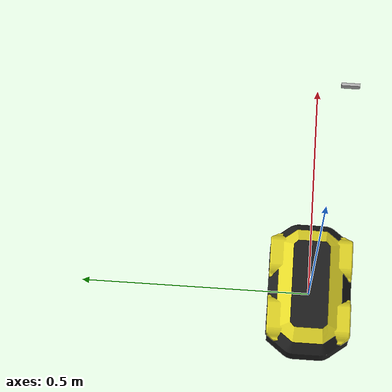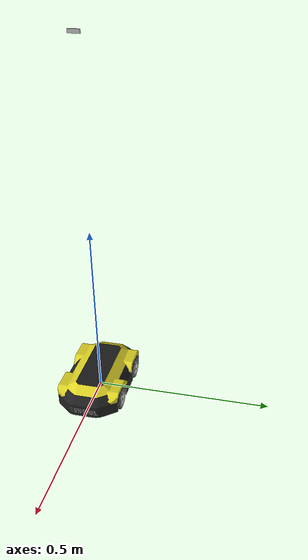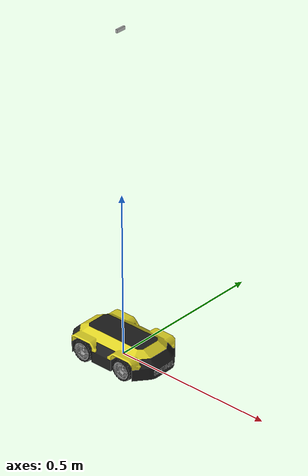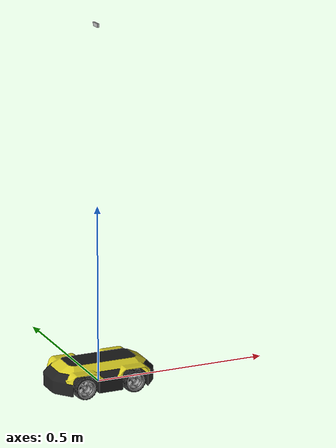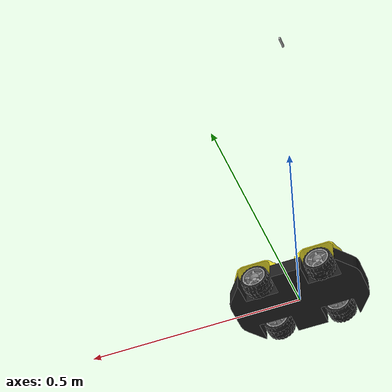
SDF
<sdf version='1.6'>
  <model name='sentinel'>
    <link name='baselink'>
      <pose frame=''>0 0 0 0 -0 0</pose>
      <inertial>
        <pose frame=''>-0.000676 -8.5e-05 0.039781 0 -0 0</pose>
        <mass>8.011</mass>
        <inertia>
          <ixx>0.0122993</ixx>
          <ixy>2.85946e-06</ixy>
          <ixz>-4.62626e-07</ixz>
          <iyy>0.0474604</iyy>
          <iyz>1.24541e-07</iyz>
          <izz>0.058689</izz>
        </inertia>
      </inertial>
      <collision name='baselink_collision'>
        <pose frame=''>0 0 0 0 -0 0</pose>
        <geometry>
          <mesh>
            <scale>1 1 1</scale>
            <uri>model://sentinel/meshes/baselink.STL</uri>
          </mesh>
        </geometry>
        <surface>
          <contact>
            <ode/>
          </contact>
          <friction>
            <ode/>
          </friction>
        </surface>
      </collision>
      <collision name='baselink_fixed_joint_lump__basemiddlelink_collision_1'>
        <pose frame=''>0 0 0 0 -0 0</pose>
        <geometry>
          <mesh>
            <scale>1 1 1</scale>
            <uri>model://sentinel/meshes/basemiddlelink.STL</uri>
          </mesh>
        </geometry>
        <surface>
          <contact>
            <ode/>
          </contact>
          <friction>
            <ode/>
          </friction>
        </surface>
      </collision>
      <collision name='baselink_fixed_joint_lump__basetoplink_collision_2'>
        <pose frame=''>0 0 0 0 -0 0</pose>
        <geometry>
          <mesh>
            <scale>1 1 1</scale>
            <uri>model://sentinel/meshes/basetoplink.STL</uri>
          </mesh>
        </geometry>
        <surface>
          <contact>
            <ode/>
          </contact>
          <friction>
            <ode/>
          </friction>
        </surface>
      </collision>
      <collision name='baselink_fixed_joint_lump__sentinelmarkinglink_collision_3'>
        <pose frame=''>0 0 0 0 -0 0</pose>
        <geometry>
          <mesh>
            <scale>1 1 1</scale>
            <uri>model://sentinel/meshes/sentinelmarkinglink.STL</uri>
          </mesh>
        </geometry>
        <surface>
          <contact>
            <ode/>
          </contact>
          <friction>
            <ode/>
          </friction>
        </surface>
      </collision>
      <visual name='baselink_visual'>
        <pose frame=''>0 0 0 0 -0 0</pose>
        <geometry>
          <mesh>
            <scale>1 1 1</scale>
            <uri>model://sentinel/meshes/baselink.STL</uri>
          </mesh>
        </geometry>
        <material>
          <script>
            <name>Gazebo/Black</name>
            <uri>file://media/materials/scripts/gazebo.material</uri>
          </script>
        </material>
      </visual>
      <visual name='baselink_fixed_joint_lump__basemiddlelink_visual_1'>
        <pose frame=''>0 0 0 0 -0 0</pose>
        <geometry>
          <mesh>
            <scale>1 1 1</scale>
            <uri>model://sentinel/meshes/basemiddlelink.STL</uri>
          </mesh>
        </geometry>
        <material>
          <script>
            <name>Gazebo/Yellow</name>
            <uri>file://media/materials/scripts/gazebo.material</uri>
          </script>
        </material>
      </visual>
      <visual name='baselink_fixed_joint_lump__basetoplink_visual_2'>
        <pose frame=''>0 0 0 0 -0 0</pose>
        <geometry>
          <mesh>
            <scale>1 1 1</scale>
            <uri>model://sentinel/meshes/basetoplink.STL</uri>
          </mesh>
        </geometry>
        <material>
          <script>
            <name>Gazebo/Black</name>
            <uri>file://media/materials/scripts/gazebo.material</uri>
          </script>
        </material>
      </visual>
      <visual name='baselink_fixed_joint_lump__sentinelmarkinglink_visual_3'>
        <pose frame=''>0 0 0 0 -0 0</pose>
        <geometry>
          <mesh>
            <scale>1 1 1</scale>
            <uri>model://sentinel/meshes/sentinelmarkinglink.STL</uri>
          </mesh>
        </geometry>
        <material>
          <script>
            <name>Gazebo/RustySteel</name>
            <uri>file://media/materials/scripts/gazebo.material</uri>
          </script>
        </material>
      </visual>
      <velocity_decay/>
      <velocity_decay/>
      <velocity_decay/>
      <gravity>1</gravity>
      <velocity_decay/>
    </link>
    <link name='backleftwheellink'>
      <pose frame=''>-0.0725 0.083539 0.0175 0 -0 0</pose>
      <inertial>
        <pose frame=''>-0 -0.013862 -0 0 -0 0</pose>
        <mass>0.137786</mass>
        <inertia>
          <ixx>6.7733e-05</ixx>
          <ixy>1.539e-13</ixy>
          <ixz>4.79578e-10</ixz>
          <iyy>9.45e-05</iyy>
          <iyz>1.65489e-12</iyz>
          <izz>6.7733e-05</izz>
        </inertia>
      </inertial>
      <collision name='backleftwheellink_collision'>
        <pose frame=''>0 0 0 0 -0 0</pose>
        <geometry>
          <mesh>
            <scale>1 1 1</scale>
            <uri>model://sentinel/meshes/backleftwheellink.STL</uri>
          </mesh>
        </geometry>
        <surface>
          <contact>
            <ode/>
          </contact>
          <friction>
            <ode/>
          </friction>
        </surface>
      </collision>
      <collision name='backleftwheellink_fixed_joint_lump__backlefttirelink_collision_1'>
        <pose frame=''>0 0 0 0 -0 0</pose>
        <geometry>
          <mesh>
            <scale>1 1 1</scale>
            <uri>model://sentinel/meshes/backlefttirelink.STL</uri>
          </mesh>
        </geometry>
        <surface>
          <contact>
            <ode/>
          </contact>
          <friction>
            <ode/>
          </friction>
        </surface>
      </collision>
      <visual name='backleftwheellink_visual'>
        <pose frame=''>0 0 0 0 -0 0</pose>
        <geometry>
          <mesh>
            <scale>1 1 1</scale>
            <uri>model://sentinel/meshes/backleftwheellink.STL</uri>
          </mesh>
        </geometry>
        <material>
          <script>
            <name>Gazebo/Grey</name>
            <uri>file://media/materials/scripts/gazebo.material</uri>
          </script>
        </material>
      </visual>
      <visual name='backleftwheellink_fixed_joint_lump__backlefttirelink_visual_1'>
        <pose frame=''>0 0 0 0 -0 0</pose>
        <geometry>
          <mesh>
            <scale>1 1 1</scale>
            <uri>model://sentinel/meshes/backlefttirelink.STL</uri>
          </mesh>
        </geometry>
        <material>
          <script>
            <name>Gazebo/Black</name>
            <uri>file://media/materials/scripts/gazebo.material</uri>
          </script>
        </material>
      </visual>
      <velocity_decay/>
      <gravity>1</gravity>
      <velocity_decay/>
    </link>
    <joint name='backleftjoint' type='revolute'>
      <child>backleftwheellink</child>
      <parent>baselink</parent>
      <axis>
        <xyz>0 -1 0</xyz>
        <limit>
          <lower>-1e+16</lower>
          <upper>1e+16</upper>
        </limit>
        <dynamics>
          <spring_reference>0</spring_reference>
          <spring_stiffness>0</spring_stiffness>
        </dynamics>
        <use_parent_model_frame>1</use_parent_model_frame>
      </axis>
    </joint>
    <link name='backrightwheellink'>
      <pose frame=''>-0.0725 -0.083539 0.0175 0 -0 0</pose>
      <inertial>
        <pose frame=''>0 0.01354 -0 0 -0 0</pose>
        <mass>0.137786</mass>
        <inertia>
          <ixx>6.77463e-05</ixx>
          <ixy>-1.50984e-12</ixy>
          <ixz>0</ixz>
          <iyy>9.45e-05</iyy>
          <iyz>0</iyz>
          <izz>6.77483e-05</izz>
        </inertia>
      </inertial>
      <collision name='backrightwheellink_collision'>
        <pose frame=''>0 0 0 0 -0 0</pose>
        <geometry>
          <mesh>
            <scale>1 1 1</scale>
            <uri>model://sentinel/meshes/backrightwheellink.STL</uri>
          </mesh>
        </geometry>
        <surface>
          <contact>
            <ode/>
          </contact>
          <friction>
            <ode/>
          </friction>
        </surface>
      </collision>
      <collision name='backrightwheellink_fixed_joint_lump__backrightitrelink_collision_1'>
        <pose frame=''>0 0 0 0 -0 0</pose>
        <geometry>
          <mesh>
            <scale>1 1 1</scale>
            <uri>model://sentinel/meshes/backrightitrelink.STL</uri>
          </mesh>
        </geometry>
        <surface>
          <contact>
            <ode/>
          </contact>
          <friction>
            <ode/>
          </friction>
        </surface>
      </collision>
      <visual name='backrightwheellink_visual'>
        <pose frame=''>0 0 0 0 -0 0</pose>
        <geometry>
          <mesh>
            <scale>1 1 1</scale>
            <uri>model://sentinel/meshes/backrightwheellink.STL</uri>
          </mesh>
        </geometry>
        <material>
          <script>
            <name>Gazebo/Grey</name>
            <uri>file://media/materials/scripts/gazebo.material</uri>
          </script>
        </material>
      </visual>
      <visual name='backrightwheellink_fixed_joint_lump__backrightitrelink_visual_1'>
        <pose frame=''>0 0 0 0 -0 0</pose>
        <geometry>
          <mesh>
            <scale>1 1 1</scale>
            <uri>model://sentinel/meshes/backrightitrelink.STL</uri>
          </mesh>
        </geometry>
        <material>
          <script>
            <name>Gazebo/Black</name>
            <uri>file://media/materials/scripts/gazebo.material</uri>
          </script>
        </material>
      </visual>
      <velocity_decay/>
      <gravity>1</gravity>
      <velocity_decay/>
    </link>
    <joint name='backrightjoint' type='revolute'>
      <child>backrightwheellink</child>
      <parent>baselink</parent>
      <axis>
        <xyz>0 1 0</xyz>
        <limit>
          <lower>-1e+16</lower>
          <upper>1e+16</upper>
        </limit>
        <dynamics>
          <spring_reference>0</spring_reference>
          <spring_stiffness>0</spring_stiffness>
        </dynamics>
        <use_parent_model_frame>1</use_parent_model_frame>
      </axis>
    </joint>
    <link name='frontleftwheellink'>
      <pose frame=''>0.0725 0.083539 0.0175 0 -0 0</pose>
      <inertial>
        <pose frame=''>-0 -0.01354 -0 0 -0 0</pose>
        <mass>0.137786</mass>
        <inertia>
          <ixx>6.77463e-05</ixx>
          <ixy>-1.21729e-12</ixy>
          <ixz>4.79578e-10</ixz>
          <iyy>9.45e-05</iyy>
          <iyz>2.42394e-13</iyz>
          <izz>6.77483e-05</izz>
        </inertia>
      </inertial>
      <collision name='frontleftwheellink_collision'>
        <pose frame=''>0 0 0 0 -0 0</pose>
        <geometry>
          <mesh>
            <scale>1 1 1</scale>
            <uri>model://sentinel/meshes/frontleftwheellink.STL</uri>
          </mesh>
        </geometry>
        <surface>
          <contact>
            <ode/>
          </contact>
          <friction>
            <ode/>
          </friction>
        </surface>
      </collision>
      <collision name='frontleftwheellink_fixed_joint_lump__frontlefttirelink_collision_1'>
        <pose frame=''>0 0 0 0 -0 0</pose>
        <geometry>
          <mesh>
            <scale>1 1 1</scale>
            <uri>model://sentinel/meshes/frontlefttirelink.STL</uri>
          </mesh>
        </geometry>
        <surface>
          <contact>
            <ode/>
          </contact>
          <friction>
            <ode/>
          </friction>
        </surface>
      </collision>
      <visual name='frontleftwheellink_visual'>
        <pose frame=''>0 0 0 0 -0 0</pose>
        <geometry>
          <mesh>
            <scale>1 1 1</scale>
            <uri>model://sentinel/meshes/frontleftwheellink.STL</uri>
          </mesh>
        </geometry>
        <material>
          <script>
            <name>Gazebo/Grey</name>
            <uri>file://media/materials/scripts/gazebo.material</uri>
          </script>
        </material>
      </visual>
      <visual name='frontleftwheellink_fixed_joint_lump__frontlefttirelink_visual_1'>
        <pose frame=''>0 0 0 0 -0 0</pose>
        <geometry>
          <mesh>
            <scale>1 1 1</scale>
            <uri>model://sentinel/meshes/frontlefttirelink.STL</uri>
          </mesh>
        </geometry>
        <material>
          <script>
            <name>Gazebo/Black</name>
            <uri>file://media/materials/scripts/gazebo.material</uri>
          </script>
        </material>
      </visual>
      <velocity_decay/>
      <gravity>1</gravity>
      <velocity_decay/>
    </link>
    <joint name='frontleftjoint' type='revolute'>
      <child>frontleftwheellink</child>
      <parent>baselink</parent>
      <axis>
        <xyz>0 -1 0</xyz>
        <limit>
          <lower>-1e+16</lower>
          <upper>1e+16</upper>
        </limit>
        <dynamics>
          <spring_reference>0</spring_reference>
          <spring_stiffness>0</spring_stiffness>
        </dynamics>
        <use_parent_model_frame>1</use_parent_model_frame>
      </axis>
    </joint>
    <link name='frontrightwheellink'>
      <pose frame=''>0.0725 -0.08354 0.0175 0 -0 0</pose>
      <inertial>
        <pose frame=''>0 0.01354 -0 0 -0 0</pose>
        <mass>0.137786</mass>
        <inertia>
          <ixx>6.77463e-05</ixx>
          <ixy>-1.50984e-12</ixy>
          <ixz>0</ixz>
          <iyy>9.45e-05</iyy>
          <iyz>0</iyz>
          <izz>6.77483e-05</izz>
        </inertia>
      </inertial>
      <collision name='frontrightwheellink_collision'>
        <pose frame=''>0 0 0 0 -0 0</pose>
        <geometry>
          <mesh>
            <scale>1 1 1</scale>
            <uri>model://sentinel/meshes/frontrightwheellink.STL</uri>
          </mesh>
        </geometry>
        <surface>
          <contact>
            <ode/>
          </contact>
          <friction>
            <ode/>
          </friction>
        </surface>
      </collision>
      <collision name='frontrightwheellink_fixed_joint_lump__frontrighttirelink_collision_1'>
        <pose frame=''>0 0 0 0 -0 0</pose>
        <geometry>
          <mesh>
            <scale>1 1 1</scale>
            <uri>model://sentinel/meshes/frontrighttirelink.STL</uri>
          </mesh>
        </geometry>
        <surface>
          <contact>
            <ode/>
          </contact>
          <friction>
            <ode/>
          </friction>
        </surface>
      </collision>
      <visual name='frontrightwheellink_visual'>
        <pose frame=''>0 0 0 0 -0 0</pose>
        <geometry>
          <mesh>
            <scale>1 1 1</scale>
            <uri>model://sentinel/meshes/frontrightwheellink.STL</uri>
          </mesh>
        </geometry>
        <material>
          <script>
            <name>Gazebo/Grey</name>
            <uri>file://media/materials/scripts/gazebo.material</uri>
          </script>
        </material>
      </visual>
      <visual name='frontrightwheellink_fixed_joint_lump__frontrighttirelink_visual_1'>
        <pose frame=''>0 0 0 0 -0 0</pose>
        <geometry>
          <mesh>
            <scale>1 1 1</scale>
            <uri>model://sentinel/meshes/frontrighttirelink.STL</uri>
          </mesh>
        </geometry>
        <material>
          <script>
            <name>Gazebo/Black</name>
            <uri>file://media/materials/scripts/gazebo.material</uri>
          </script>
        </material>
      </visual>
      <velocity_decay/>
      <gravity>1</gravity>
      <velocity_decay/>
    </link>
    <joint name='frontrightjoint' type='revolute'>
      <child>frontrightwheellink</child>
      <parent>baselink</parent>
      <axis>
        <xyz>0 1 0</xyz>
        <limit>
          <lower>-1e+16</lower>
          <upper>1e+16</upper>
        </limit>
        <dynamics>
          <spring_reference>0</spring_reference>
          <spring_stiffness>0</spring_stiffness>
        </dynamics>
        <use_parent_model_frame>1</use_parent_model_frame>
      </axis>
    </joint>

    <link name="cam1link">
      <pose>0 0 1 0 0 0</pose>
      <inertial>
        <mass>0.001</mass>
        <inertia>
          <ixx>4.166666666666667e-06</ixx>
          <iyy>5.208333333333334e-07</iyy>
          <izz>3.854166666666666e-06</izz>
        </inertia>
      </inertial>

      <visual name="visual">
        <pose>0 0 0 0 0 0</pose>
        <geometry>
         <box>
            <size>0.005 0.03 0.01</size>
          </box>
        </geometry>
      </visual>
      <collision name="collision">
        <geometry>
          <box>
            <size>0.005 0.03 0.01</size>
          </box>
        </geometry>
      </collision>

      <sensor type="depth" name="cam1_sensor">
        <always_on>true</always_on>
        <update_rate>30.0</update_rate>
        <visualize>true</visualize>
        <camera name="head">
          <horizontal_fov>1.3962634</horizontal_fov>
          <image>
            <width>640</width>
            <height>480</height>
            <format>R8G8B8</format>
          </image>
          <depth_camera>
            <output>1</output>
          </depth_camera>
          <clip>
            <near>0.05</near>
            <far>300</far>
          </clip>
        </camera>

        <plugin name="camera_controller" filename="libgazebo_ros_camera.so">
        <alwaysOn>true</alwaysOn>
        <updateRate>0.0</updateRate>
        <cameraName>cam1</cameraName>
        <imageTopicName>image_raw</imageTopicName>
        <cameraInfoTopicName>camera_info</cameraInfoTopicName>
        <frameName>camera_link</frameName>
        <hackBaseline>0.07</hackBaseline>
        <distortionK1>0.0</distortionK1>
        <distortionK2>0.0</distortionK2>
        <distortionK3>0.0</distortionK3>
        <distortionT1>0.0</distortionT1>
        <distortionT2>0.0</distortionT2>
      </plugin>
      </sensor>
    </link>
    <joint name='cam_joint' type='fixed'>
            <child>cam1link</child>
            <parent>baselink</parent>
            <axis>
                <xyz>0 0 1</xyz>
                <limit>
                <lower>0</lower>
                <upper>0</upper>
                </limit>
            </axis>
    </joint>

    <link name ='sensor_link'>
     <pose>0 0 1 0 0 0</pose>
     <inertial>
      <mass>0.001</mass>
      <inertia>
          <ixx>4.166666666666667e-06</ixx>
          <iyy>5.208333333333334e-07</iyy>
          <izz>3.854166666666666e-06</izz>
      </inertia>
     </inertial>

     <collision name='sensor_collision'>
       <geometry>
         <box>
            <size>0.003 0.01 0.01</size>
         </box>
       </geometry>
     </collision>

     <visual name='sensor_visual'>
        <pose>0 0 0 0 0 0</pose>
        <geometry>
         <box>
            <size>0.005 0.03 0.01</size>
         </box>
        </geometry>
     </visual>

     <sensor type="depth" name="r200_sensor">
      <always_on>true</always_on>
      <update_rate>30</update_rate>
      <visualize>true</visualize>
      <camera name="head">
        <horizontal_fov>1.3962634</horizontal_fov>
        <image>
          <width>640</width>
          <height>480</height>
          <format>R8G8B8</format>
        </image>
        <depth_camera>
          <output>1</output>
        </depth_camera>
        <clip>
          <near>0.02</near>
          <far>30</far>
        </clip>
      </camera>

      <plugin name="r200_controller" filename="libgazebo_ros_openni_kinect.so">
        <baseline>0.2</baseline>
        <alwaysOn>true</alwaysOn>
        <updateRate>1.0</updateRate>
        <cameraName>r200_ir</cameraName>
        <imageTopicName>/r200/depth/image_raw</imageTopicName>
        <cameraInfoTopicName>/r200/depth/camera_info</cameraInfoTopicName>
        <depthImageTopicName>/r200/depth/image_raw</depthImageTopicName>
        <depthImageInfoTopicName>/r200/depth/camera_info</depthImageInfoTopicName>
        <pointCloudTopicName>/r200/depth/points</pointCloudTopicName>
        <frameName>r200</frameName>
        <pointCloudCutoff>0.5</pointCloudCutoff>
        <pointCloudCutoffMax>10</pointCloudCutoffMax>
        <distortionK1>0.00000001</distortionK1>
        <distortionK2>0.00000001</distortionK2>
        <distortionK3>0.00000001</distortionK3>
        <distortionT1>0.00000001</distortionT1>
        <distortionT2>0.00000001</distortionT2>
        <CxPrime>0</CxPrime>
        <Cx>0</Cx>
        <Cy>0</Cy>
        <focalLength>0</focalLength>
        <hackBaseline>0</hackBaseline>
      </plugin>
     </sensor>
    </link>
    <joint type="fixed" name="sensor_joint">
            <child>sensor_link</child>
            <parent>baselink</parent>
            <axis>
                <xyz>0 0 1</xyz>
                <limit>
                <lower>0</lower>
                <upper>0</upper>
                </limit>
            </axis>
    </joint>

  <plugin name="skid_steer_drive_controller" filename="libgazebo_ros_skid_steer_drive.so">
     <updateRate>100.0</updateRate>
     <robotNamespace>/</robotNamespace>
     <leftFrontJoint>frontleftjoint</leftFrontJoint>
     <rightFrontJoint>frontrightjoint</rightFrontJoint>
     <leftRearJoint>backleftjoint</leftRearJoint>
     <rightRearJoint>backrightjoint</rightRearJoint>
     <wheelSeparation>0.14</wheelSeparation>
     <wheelDiameter>0.06</wheelDiameter>
     <robotBaseFrame>robot_footprint</robotBaseFrame>
     <torque>200</torque>
     <MaxForce>100.0</MaxForce>
     <commandTopic>cmd_vel</commandTopic>
     <odometryTopic>odom</odometryTopic>
     <odometryFrame>odom</odometryFrame>
     <broadcastTF>true</broadcastTF>
     <covariance_x>0.001</covariance_x>
     <covariance_y>0.001</covariance_y>
     <covariance_yaw>0.01</covariance_yaw>
  </plugin>

  </model>
</sdf>
